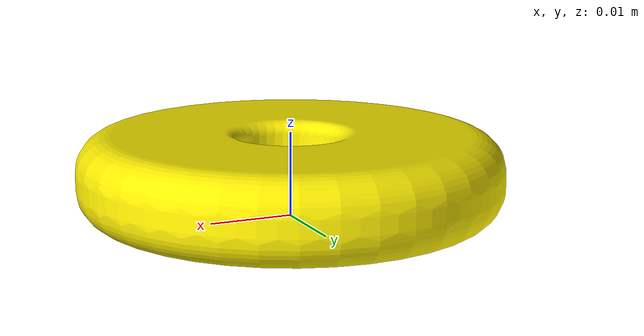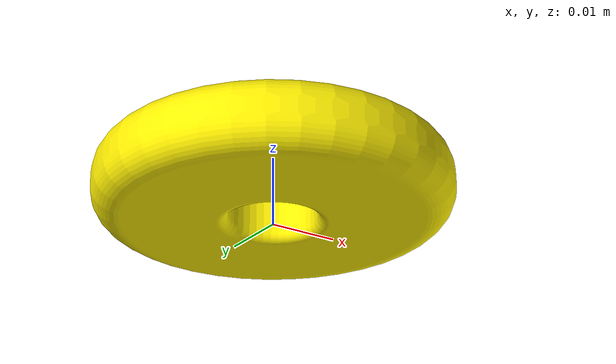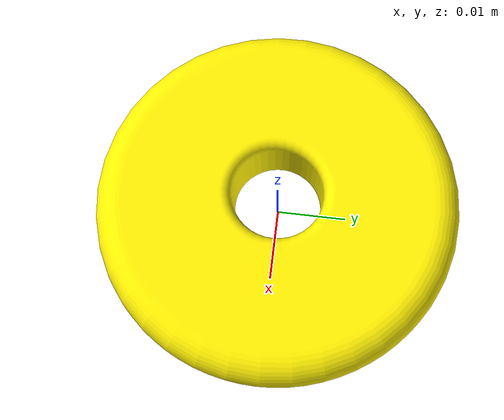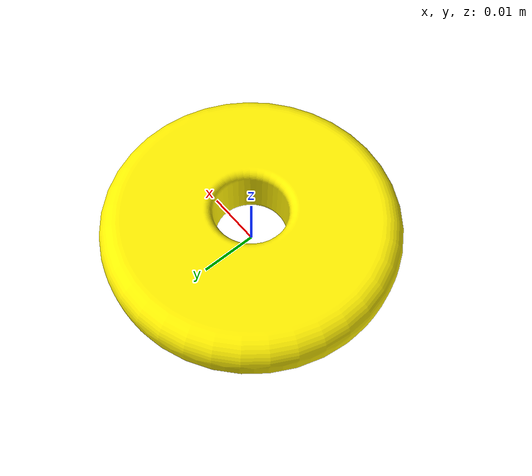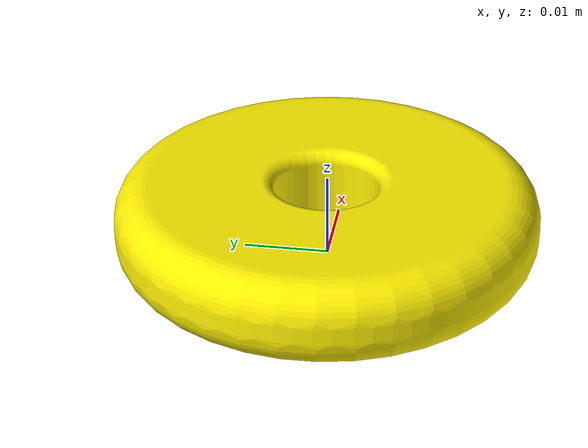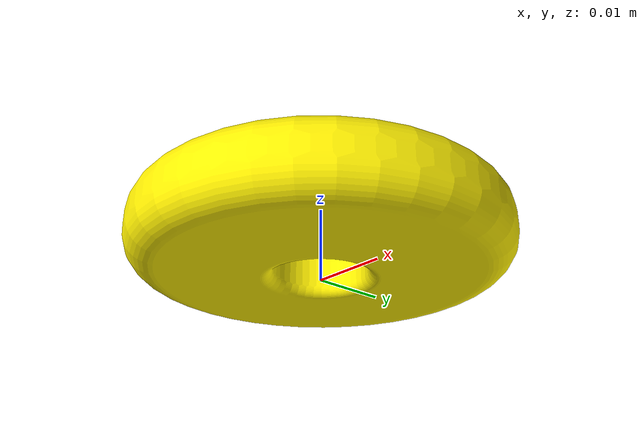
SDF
<?xml version="1.0"?>
<sdf version="1.6">
    <model name="disk3">
        <link name="disk3_link">
            <frame name="disk3_frame"><pose>0 0 0 0 -0 0</pose></frame>
            <visual name="disk3_0_disk3_visual">
                <pose>0.10000000000000000555 -1.3853816915354433295e-17 -0.030000000000000002359 0 -0 0</pose>
                <geometry>
                    <mesh>
                        <uri>
                            file:///home/leo/workspace/ur_gz/src/Universal_Robots_ROS2_Ignition_Simulation/ur_simulation_gz/sdf/models/disk3/disk3.dae
                        </uri>
                    </mesh>
                </geometry>
                <material>
                    <ambient>1 0.94117647058823528106 0 1</ambient>
                    <diffuse>1 0.94117647058823528106 0 1</diffuse>
                    <specular>0.1 0.1 0.1 1</specular>
                    <emissive>0 0 0 0</emissive>
                </material>
            </visual>
            <collision name="disk3_0_disk3_visual">
                <pose>0.10000000000000000555 -1.3853816915354433295e-17 -0.030000000000000002359 0 -0 0</pose>
                <geometry>
                    <mesh>
                        <uri>
                            file:///home/leo/workspace/ur_gz/src/Universal_Robots_ROS2_Ignition_Simulation/ur_simulation_gz/sdf/models/disk3/disk3.stl
                        </uri>
                    </mesh>
                </geometry>
                <surface>
                <friction>
                    <ode>
                    <mu>0.1</mu> <!-- Coeficiente de fricção estática -->
                    <mu2>0.1</mu2> <!-- Coeficiente de fricção dinâmica -->
                    </ode>
                    <torsional>
                    <coefficient>1.0</coefficient> <!-- Coeficiente de fricção torsional -->
                    </torsional>
                </friction>
                </surface>
            </collision>
            <inertial>
                <pose frame="disk3_frame">0.0 0.0 0.0 0.0 0.0 0.0</pose>
                <mass>0.04678468</mass>
                <inertia>
                    <ixx>0.00000779</ixx><ixy>0</ixy><ixz>0</ixz>
                    <iyy>0.00000779</iyy><iyz>0</iyz>
                    <izz>0.00001486</izz>
                </inertia>
            </inertial>
        </link>

    </model>
</sdf>
